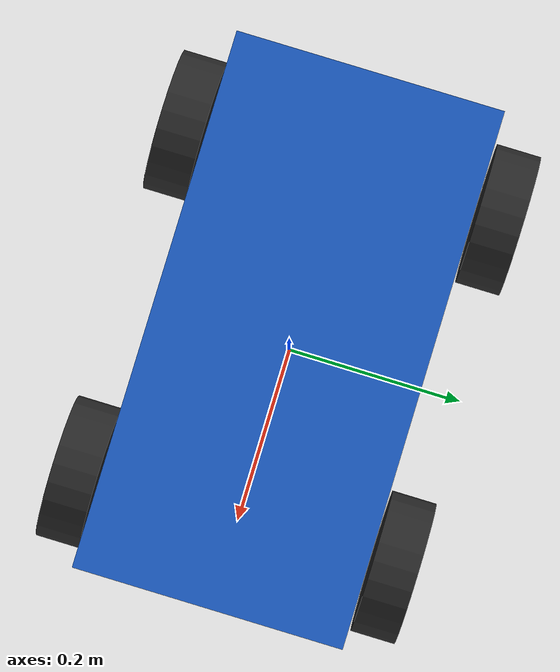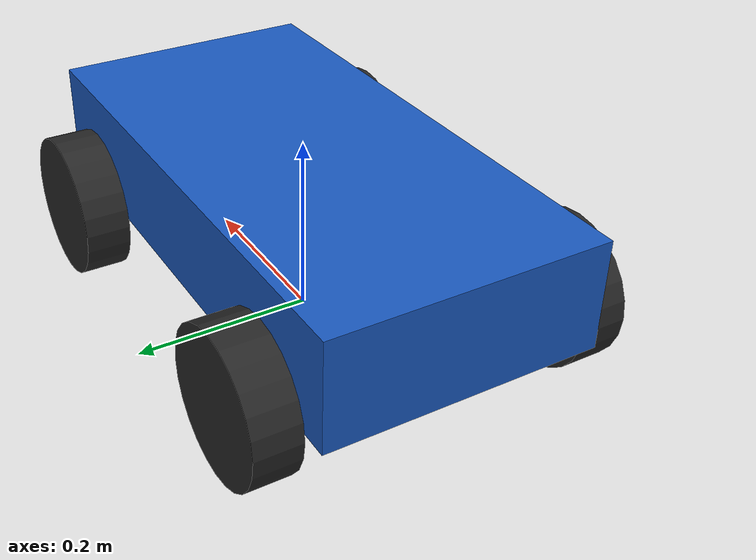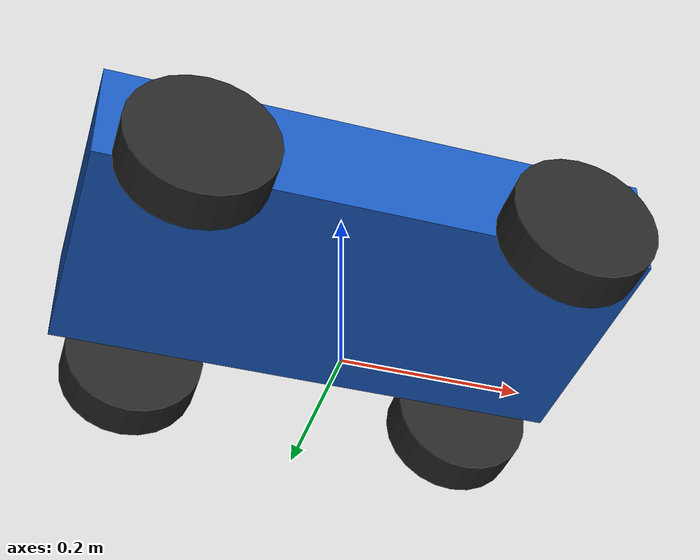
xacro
<?xml version="1.0"?>
<robot name="auto_vehicle" xmlns:xacro="http://www.ros.org/wiki/xacro">

  <!-- 바퀴 공통 매크로 파일 포함 (상대 경로) -->
  <xacro:include filename="wheel_macro.xacro"/>

  <!-- 1. 주요 제원 상수(Properties) 정의         -->
  <!-- 차체(Chassis) 치수 및 질량 -->
  <xacro:property name="chassis_length"    value="0.60"/> <!-- 전장 (Length): 60cm -->
  <xacro:property name="chassis_width"     value="0.30"/> <!-- 전폭 (Width): 30cm -->
  <xacro:property name="chassis_height"    value="0.12"/> <!-- 전고 (Height): 12cm -->
  <xacro:property name="chassis_mass"      value="8.00"/> <!-- 차체 질량: 8kg -->

  <!-- 바퀴(Wheel) 치수 및 질량 -->
  <xacro:property name="wheel_radius"      value="0.08"/> <!-- 반지름: 8cm (지름 16cm) -->
  <xacro:property name="wheel_width"       value="0.05"/> <!-- 폭: 5cm -->
  <xacro:property name="wheel_mass"        value="1.20"/> <!-- 바퀴 개당 질량: 1.2kg -->

  <!-- 기구학적 배치 치수 -->
  <xacro:property name="wheel_base"        value="0.40"/> <!-- 축거 (앞뒤 바퀴 축간 거리): 40cm -->
  <xacro:property name="wheel_track"       value="0.36"/> <!-- 윤거 (좌우 바퀴 중심 거리): 36cm -->
  <xacro:property name="max_steer_angle"   value="0.52"/> <!-- 최대 조향각: 약 30도 (0.52 rad) -->

  <!--
    [매크로] 직육면체(Box) 관성 모멘트 계산
    - Ixx = (1/12) * m * (y^2 + z^2)
    - Iyy = (1/12) * m * (x^2 + z^2)
    - Izz = (1/12) * m * (x^2 + y^2)
  -->
  <xacro:macro name="box_inertia" params="m x y z">
    <inertial>
      <mass value="${m}"/>
      <!-- 박스 중심에 질량 중심(CoM)이 위치하도록 z 오프셋 지정 -->
      <origin xyz="0 0 ${z/2.0}" rpy="0 0 0"/>
      <inertia ixx="${(m / 12.0) * (y*y + z*z)}" ixy="0.0" ixz="0.0"
               iyy="${(m / 12.0) * (x*x + z*z)}" iyz="0.0"
               izz="${(m / 12.0) * (x*x + y*y)}"/>
    </inertial>
  </xacro:macro>

  <!-- 2. 지면 기준 좌표계 (base_footprint)       -->
  <!--
    base_footprint는 로봇이 위치한 지면 바로 위(z=0)에 위치하는 가상 링크입니다.
    내비게이션(Nav2) 및 SLAM에서 로봇의 2D 평면 위치 기준으로 매우 중요합니다.
  -->
  <link name="base_footprint"/>

  <!-- 3. 차체 섀시 (base_link)                  -->
  <link name="base_link">
    <!-- 3D 그래픽 외형 -->
    <visual>
      <origin xyz="0 0 ${chassis_height/2.0}" rpy="0 0 0"/>
      <geometry>
        <box size="${chassis_length} ${chassis_width} ${chassis_height}"/>
      </geometry>
      <material name="deep_blue">
        <color rgba="0.1 0.35 0.75 1.0"/>
      </material>
    </visual>

    <!-- 물리 충돌 영역 -->
    <collision>
      <origin xyz="0 0 ${chassis_height/2.0}" rpy="0 0 0"/>
      <geometry>
        <box size="${chassis_length} ${chassis_width} ${chassis_height}"/>
      </geometry>
    </collision>

    <!-- 차체 물리 관성 -->
    <xacro:box_inertia m="${chassis_mass}" x="${chassis_length}" y="${chassis_width}" z="${chassis_height}"/>
  </link>

  <!-- base_footprint와 base_link 결합 (고정 관절) -->
  <joint name="base_footprint_joint" type="fixed">
    <parent link="base_footprint"/>
    <child link="base_link"/>
    <!-- 바퀴 반지름(wheel_radius)만큼 섀시를 지면에서 들어올립니다 -->
    <origin xyz="0 0 ${wheel_radius}" rpy="0 0 0"/>
  </joint>

  <!-- 4. 4개 바퀴 결합 (매크로 호출)             -->

  <!-- [전륜 좌측 바퀴] 조향 너클 + 구동 휠 -->
  <xacro:steer_wheel
    prefix="front_left"
    parent="base_link"
    x_reflect="1"
    y_reflect="1"
    wheel_radius="${wheel_radius}"
    wheel_width="${wheel_width}"
    wheel_mass="${wheel_mass}"
    wheel_track="${wheel_track}"
    wheel_base="${wheel_base}"
    max_steer_angle="${max_steer_angle}"/>

  <!-- [전륜 우측 바퀴] 조향 너클 + 구동 휠 -->
  <xacro:steer_wheel
    prefix="front_right"
    parent="base_link"
    x_reflect="1"
    y_reflect="-1"
    wheel_radius="${wheel_radius}"
    wheel_width="${wheel_width}"
    wheel_mass="${wheel_mass}"
    wheel_track="${wheel_track}"
    wheel_base="${wheel_base}"
    max_steer_angle="${max_steer_angle}"/>

  <!-- [후륜 좌측 바퀴] 고정축 연속 회전 휠 -->
  <xacro:drive_wheel
    prefix="rear_left"
    parent="base_link"
    x_reflect="-1"
    y_reflect="1"
    wheel_radius="${wheel_radius}"
    wheel_width="${wheel_width}"
    wheel_mass="${wheel_mass}"
    wheel_track="${wheel_track}"
    wheel_base="${wheel_base}"/>

  <!-- [후륜 우측 바퀴] 고정축 연속 회전 휠 -->
  <xacro:drive_wheel
    prefix="rear_right"
    parent="base_link"
    x_reflect="-1"
    y_reflect="-1"
    wheel_radius="${wheel_radius}"
    wheel_width="${wheel_width}"
    wheel_mass="${wheel_mass}"
    wheel_track="${wheel_track}"
    wheel_base="${wheel_base}"/>

  <!-- Gazebo 물리 속성 및 차동구동 플러그인       -->
  <gazebo reference="front_left_wheel_link">
    <mu1>1.0</mu1><mu2>1.0</mu2><kp>1000000.0</kp><kd>100.0</kd>
  </gazebo>
  <gazebo reference="front_right_wheel_link">
    <mu1>1.0</mu1><mu2>1.0</mu2><kp>1000000.0</kp><kd>100.0</kd>
  </gazebo>
  <gazebo reference="rear_left_wheel_link">
    <mu1>1.0</mu1><mu2>1.0</mu2><kp>1000000.0</kp><kd>100.0</kd>
  </gazebo>
  <gazebo reference="rear_right_wheel_link">
    <mu1>1.0</mu1><mu2>1.0</mu2><kp>1000000.0</kp><kd>100.0</kd>
  </gazebo>

  <gazebo>
  <plugin filename="gz-sim-ackermann-steering-system"
          name="gz::sim::systems::AckermannSteering">

    <!-- 후륜 구동 -->
    <left_joint>rear_left_wheel_joint</left_joint>
    <right_joint>rear_right_wheel_joint</right_joint>

    <!-- 전륜 조향 -->
    <left_steering_joint>front_left_steer_joint</left_steering_joint>
    <right_steering_joint>front_right_steer_joint</right_steering_joint>

    <!-- 차량 제원 -->
    <wheel_separation>${wheel_track}</wheel_separation>
    <kingpin_width>${wheel_track}</kingpin_width>
    <wheel_base>${wheel_base}</wheel_base>
    <wheel_radius>${wheel_radius}</wheel_radius>
    <steering_limit>${max_steer_angle}</steering_limit>

    <!-- ROS / Gazebo 토픽 -->
    <topic>/cmd_vel</topic>
    <odom_topic>/odom</odom_topic>
    <frame_id>odom</frame_id>
    <child_frame_id>base_footprint</child_frame_id>
  </plugin>
</gazebo>

</robot>

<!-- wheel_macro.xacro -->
<robot xmlns:xacro="http://www.ros.org/wiki/xacro">

  <xacro:macro name="cylinder_inertia" params="m r h">
    <inertial>
      <mass value="${m}"/>
      <origin xyz="0 0 0" rpy="0 0 0"/>
      <inertia ixx="${(m / 12.0) * (3.0 * r * r + h * h)}" ixy="0.0" ixz="0.0"
               iyy="${(m / 12.0) * (3.0 * r * r + h * h)}" iyz="0.0"
               izz="${(m / 2.0) * (r * r)}"/>
    </inertial>
  </xacro:macro>

  <xacro:macro name="drive_wheel" params="prefix parent x_reflect y_reflect wheel_radius wheel_width wheel_mass wheel_track wheel_base">

    <!-- 1. 바퀴 링크 (강체) 정의 -->
    <link name="${prefix}_wheel_link">
      <!-- 눈에 보이는 3D 시각적 외형 -->
      <visual>
        <origin xyz="0 0 0" rpy="${pi/2.0} 0 0"/>
        <geometry>
          <cylinder radius="${wheel_radius}" length="${wheel_width}"/>
        </geometry>
        <material name="tire_black">
          <color rgba="0.15 0.15 0.15 1.0"/>
        </material>
      </visual>

      <!-- 물리 엔진이 충돌을 계산하는 기하 형상 -->
      <collision>
        <origin xyz="0 0 0" rpy="${pi/2.0} 0 0"/>
        <geometry>
          <cylinder radius="${wheel_radius}" length="${wheel_width}"/>
        </geometry>
      </collision>

      <!-- 관성 모멘트 매크로 호출 -->
      <xacro:cylinder_inertia m="${wheel_mass}" r="${wheel_radius}" h="${wheel_width}"/>
    </link>

    <!-- 2. 차체와 바퀴를 연결하는 관절 (continuous 타입: 무제한 회전) -->
    <joint name="${prefix}_wheel_joint" type="continuous">
      <parent link="${parent}"/>
      <child link="${prefix}_wheel_link"/>
      <!--
        부모 링크(base_link) 중심으로부터 바퀴 중심 위치까지의 오프셋
        x = x_reflect * (축거 / 2)
        y = y_reflect * (윤거 / 2)
        z = 0 (섀시 높이에 맞춤)
      -->
      <origin xyz="${x_reflect * wheel_base / 2.0} ${y_reflect * wheel_track / 2.0} 0" rpy="0 0 0"/>
      <!-- 바퀴 회전축은 차량 좌우 방향인 Y축(0 1 0)입니다 -->
      <axis xyz="0 1 0"/>
    </joint>

  </xacro:macro>

  <xacro:macro name="steer_wheel" params="prefix parent x_reflect y_reflect wheel_radius wheel_width wheel_mass wheel_track wheel_base max_steer_angle">

    <!-- 1. 조향 너클(Steering Knuckle) 링크 (방향 전환을 위한 중간 링크) -->
    <link name="${prefix}_steer_link">
      <inertial>
        <!-- 조향 기구의 가상 경량 질량 할당 -->
        <mass value="0.15"/>
        <origin xyz="0 0 0" rpy="0 0 0"/>
        <inertia ixx="0.0002" ixy="0.0" ixz="0.0"
                 iyy="0.0002" iyz="0.0"
                 izz="0.0002"/>
      </inertial>
    </link>

    <!-- 2. 조향 관절: Z축(수직)을 중심으로 좌우로만 회전하는 revolute 관절 -->
    <joint name="${prefix}_steer_joint" type="revolute">
      <parent link="${parent}"/>
      <child link="${prefix}_steer_link"/>
      <origin xyz="${x_reflect * wheel_base / 2.0} ${y_reflect * wheel_track / 2.0} 0" rpy="0 0 0"/>
      <!-- 수직 회전축: Z축(0 0 1) -->
      <axis xyz="0 0 1"/>
      <!-- 조향각 한계: [-max_steer_angle, +max_steer_angle] (라디안 단위) -->
      <limit lower="${-max_steer_angle}" upper="${max_steer_angle}" effort="15.0" velocity="2.0"/>
    </joint>

    <!-- 3. 실제 굴러가는 바퀴 링크 -->
    <link name="${prefix}_wheel_link">
      <visual>
        <origin xyz="0 0 0" rpy="${pi/2.0} 0 0"/>
        <geometry>
          <cylinder radius="${wheel_radius}" length="${wheel_width}"/>
        </geometry>
        <material name="tire_black">
          <color rgba="0.15 0.15 0.15 1.0"/>
        </material>
      </visual>

      <collision>
        <origin xyz="0 0 0" rpy="${pi/2.0} 0 0"/>
        <geometry>
          <cylinder radius="${wheel_radius}" length="${wheel_width}"/>
        </geometry>
      </collision>

      <xacro:cylinder_inertia m="${wheel_mass}" r="${wheel_radius}" h="${wheel_width}"/>
    </link>

    <!-- 4. 바퀴 회전 관절: 조향 너클 링크에 결합되어 Y축으로 굴러가는 continuous 관절 -->
    <joint name="${prefix}_wheel_joint" type="continuous">
      <parent link="${prefix}_steer_link"/>
      <child link="${prefix}_wheel_link"/>
      <origin xyz="0 0 0" rpy="0 0 0"/>
      <!-- 바퀴 회전축: Y축(0 1 0) -->
      <axis xyz="0 1 0"/>
    </joint>

  </xacro:macro>

</robot>
